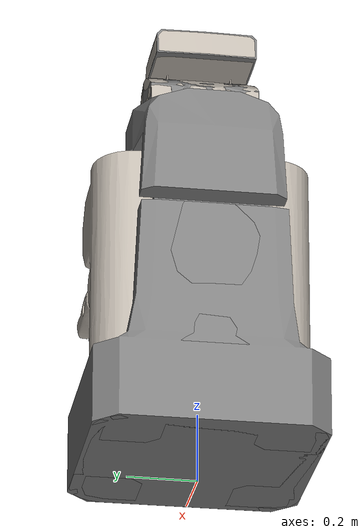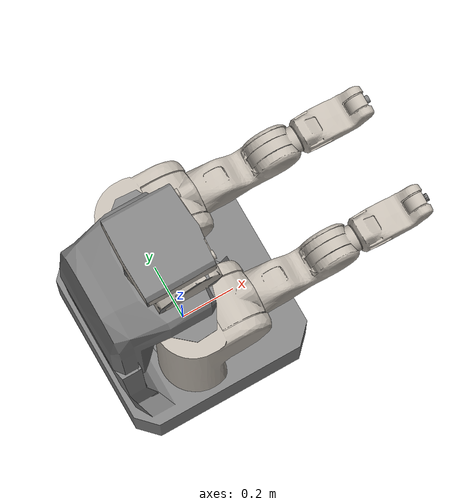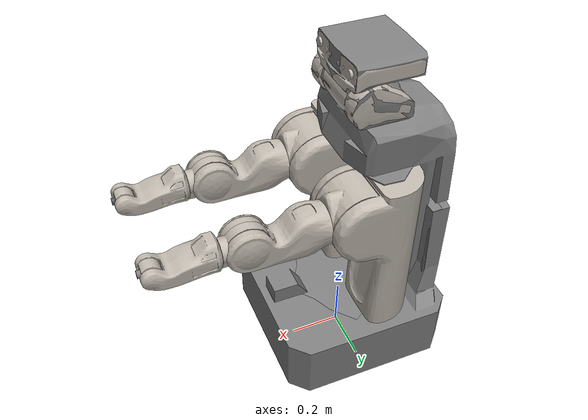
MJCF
<?xml version="1.0" ?>
<mujoco>
  <compiler angle="radian" autolimits="true"/>
  <visual>
    <global ellipsoidinertia="true"/>
  </visual>
  <default>
    <default class="pr2_joints">
      <motor ctrlrange="-100 100" ctrllimited="true"/>
    </default>
    <default class="pr2_shoulder_joints">
      <motor ctrlrange="-100 100" ctrllimited="true"/>
    </default>
    <default class="pr2_wrist_joints">
      <motor ctrlrange="-100 100" ctrllimited="true"/>
    </default>
  </default>
  <asset>
    <material name="groundplane" texture="groundplane" texuniform="true" texrepeat="5 5" reflectance="0.2"/>
    <texture type="2d" name="groundplane" builtin="checker" mark="edge" rgb1="0.2 0.3 0.4" rgb2="0.1 0.2 0.3" markrgb="0.8 0.8 0.8" width="300" height="300"/>
    <material name="base" rgba="0.5 0.5 0.5 1.0"/>
    <material name="head_v0_head_pan_mat" texture="head_v0_head_pan_tex"/>
    <texture type="2d" name="head_v0_head_pan_tex" file="meshes/head_v0/head_pan_color.png"/>
    <material name="head_v0_head_tilt_mat" texture="head_v0_head_tilt_tex"/>
    <texture type="2d" name="head_v0_head_tilt_tex" file="meshes/head_v0/head_tilt_color.png"/>
    <material name="forearm_v0_forearm_mat" texture="forearm_v0_forearm_tex"/>
    <texture type="2d" name="forearm_v0_forearm_tex" file="meshes/forearm_v0/forearm_color.png"/>
    <material name="forearm_v0_wrist_flex_mat" texture="forearm_v0_wrist_flex_tex"/>
    <texture type="2d" name="forearm_v0_wrist_flex_tex" file="meshes/forearm_v0/wrist_color.png"/>
    <material name="shoulder_v0_shoulder_lift_mat" texture="shoulder_v0_shoulder_lift_tex"/>
    <texture type="2d" name="shoulder_v0_shoulder_lift_tex" file="meshes/shoulder_v0/shoulder_lift_color.png"/>
    <material name="shoulder_v0_shoulder_pan_mat" texture="shoulder_v0_shoulder_pan_tex"/>
    <texture type="2d" name="shoulder_v0_shoulder_pan_tex" file="meshes/shoulder_v0/shoulder_pan_color.png"/>
    <material name="shoulder_v0_upper_arm_roll_mat" texture="shoulder_v0_upper_arm_roll_tex"/>
    <texture type="2d" name="shoulder_v0_upper_arm_roll_tex" file="meshes/shoulder_v0/upper_arm_roll_color.png"/>
    <material name="upper_arm_v0_upper_arm_mat" texture="upper_arm_v0_upper_arm_tex"/>
    <texture type="2d" name="upper_arm_v0_upper_arm_tex" file="meshes/upper_arm_v0/upper_arm_color.png"/>
    <material name="upper_arm_v0_elbow_flex_mat" texture="upper_arm_v0_elbow_flex_tex"/>
    <texture type="2d" name="upper_arm_v0_elbow_flex_tex" file="meshes/upper_arm_v0/elbow_flex_color.png"/>
    <mesh name="base_v0_base_vis" file="meshes/base_v0/base.obj"/>
    <mesh name="base_v0_base_L" file="meshes/base_v0/base_L.stl"/>
    <mesh name="base_v0_caster" file="meshes/base_v0/caster.stl"/>
    <mesh name="base_v0_caster_L" file="meshes/base_v0/caster_L.stl"/>
    <mesh name="torso_v0_torso_lift_L" file="meshes/torso_v0/torso_lift_L.stl"/>
    <mesh name="head_v0_head_pan_vis" file="meshes/head_v0/head_pan.obj"/>
    <mesh name="head_v0_head_pan_L" file="meshes/head_v0/head_pan_L.stl"/>
    <mesh name="head_v0_head_tilt_vis" file="meshes/head_v0/head_tilt.obj"/>
    <mesh name="head_v0_head_tilt_L" file="meshes/head_v0/head_tilt_L.stl"/>
    <mesh name="shoulder_v0_shoulder_pan_vis" file="meshes/shoulder_v0/shoulder_pan.obj"/>
    <mesh name="shoulder_v0_shoulder_pan" file="meshes/shoulder_v0/shoulder_pan.stl"/>
    <mesh name="shoulder_v0_shoulder_lift_vis" file="meshes/shoulder_v0/shoulder_lift.obj"/>
    <mesh name="shoulder_v0_shoulder_lift" file="meshes/shoulder_v0/shoulder_lift.stl"/>
    <mesh name="shoulder_v0_upper_arm_roll" file="meshes/shoulder_v0/upper_arm_roll.stl"/>
    <mesh name="shoulder_v0_upper_arm_roll_L" file="meshes/shoulder_v0/upper_arm_roll_L.stl"/>
    <mesh name="upper_arm_v0_upper_arm_vis" file="meshes/upper_arm_v0/upper_arm.obj"/>
    <mesh name="upper_arm_v0_upper_arm" file="meshes/upper_arm_v0/upper_arm.stl"/>
    <mesh name="upper_arm_v0_forearm_roll" file="meshes/upper_arm_v0/forearm_roll.stl"/>
    <mesh name="upper_arm_v0_forearm_roll_L" file="meshes/upper_arm_v0/forearm_roll_L.stl"/>
    <mesh name="upper_arm_v0_elbow_flex_vis" file="meshes/upper_arm_v0/elbow_flex.obj"/>
    <mesh name="upper_arm_v0_elbow_flex" file="meshes/upper_arm_v0/elbow_flex.stl"/>
    <mesh name="forearm_v0_forearm_vis" file="meshes/forearm_v0/forearm.obj"/>
    <mesh name="forearm_v0_forearm" file="meshes/forearm_v0/forearm.stl"/>
    <mesh name="forearm_v0_wrist_flex_vis" file="meshes/forearm_v0/wrist_flex.obj"/>
    <mesh name="forearm_v0_wrist_flex" file="meshes/forearm_v0/wrist_flex.stl"/>
    <mesh name="forearm_v0_wrist_roll" file="meshes/forearm_v0/wrist_roll.stl"/>
    <mesh name="forearm_v0_wrist_roll_L" file="meshes/forearm_v0/wrist_roll_L.stl"/>
  </asset>
  <worldbody>
    <!--Start of base-->
    <body name="base">
      <body name="base_link" pos="0.0 0.0 0.051" quat="1.0 0.0 0.0 0.0">
        <inertial pos="-0.061 0.0 0.1465" quat="1.0 0.0 0.0 0.0" mass="116.0" diaginertia="5.652232699207 5.669473158652 3.683196351726"/>
        <geom pos="0.0 0.0 0.0" quat="1.0 0.0 0.0 0.0" name="base_link_visual" group="1" contype="0" conaffinity="0" mesh="base_v0_base_vis" type="mesh" material="base"/>
        <geom pos="0.0 0.0 0.0" quat="1.0 0.0 0.0 0.0" name="base_link_collision" group="0" mesh="base_v0_base_L" type="mesh"/>
        <body name="torso_lift_link" pos="-0.05 0.0 0.739675" quat="1.0 0.0 0.0 0.0">
          <inertial pos="-0.1 0 -0.0885" quat="1.0 0.0 0.0 0.0" mass="36.248046" diaginertia="2.771653750257 2.510019507959 0.526432355569"/>
          <geom pos="0.0 0.0 0.0" quat="1.0 0.0 0.0 0.0" name="torso_lift_link_visual" group="1" contype="0" conaffinity="0" mesh="torso_v0_torso_lift_L" type="mesh"/>
          <geom pos="0.0 0.0 0.0" quat="1.0 0.0 0.0 0.0" name="torso_lift_link_collision" group="0" mesh="torso_v0_torso_lift_L" type="mesh"/>
          <body name="head_mount" pos="0.0 0.0 0.0" quat="1 0 0 0">
            <!--Start of head_pan_link-->
            <body name="head_pan_link" pos="-0.01707 0.0 0.38145" quat="1.0 0.0 0.0 0.0">
              <joint name="head_pan_joint" type="hinge" frictionloss="0.5" damping="30" stiffness="0.3" axis="0 0 1" range="-3.007 3.007"/>
              <inertial pos="0.010907 0.031693 0.090507" quat="1.0 0.0 0.0 0.0" mass="6.339" diaginertia="0.032497592 0.046545627 0.057652724"/>
              <geom pos="0.0 0.0 0.0" quat="1.0 0.0 0.0 0.0" name="head_pan_link_visual" group="1" contype="0" conaffinity="0" mesh="head_v0_head_pan_vis" material="head_v0_head_pan_mat" type="mesh"/>
              <geom pos="0.0 0.0 0.0" quat="1.0 0.0 0.0 0.0" name="head_pan_link_collision" group="0" mesh="head_v0_head_pan_L" type="mesh"/>
              <!--Start of head_tilt_link-->
              <body name="head_tilt_link" pos="0.068 0.0 0.0" quat="1.0 0.0 0.0 0.0">
                <joint name="head_tilt_joint" type="hinge" frictionloss="0.5" damping="100" stiffness="0.3" axis="0 1 0" range="-0.471238 1.39626"/>
                <inertial pos="0.001716 -0.019556 0.055002" quat="1.0 0.0 0.0 0.0" mass="4.479" diaginertia="0.024223222 0.054723086 0.067306377"/>
                <geom pos="0.0 0.0 0.0" quat="1.0 0.0 0.0 0.0" name="head_tilt_link_visual" group="1" contype="0" conaffinity="0" mesh="head_v0_head_tilt_vis" material="head_v0_head_tilt_mat" type="mesh"/>
                <geom pos="0.0 0.0 0.0" quat="1.0 0.0 0.0 0.0" name="head_tilt_link_collision" group="0" mesh="head_v0_head_tilt_L" type="mesh"/>
                <camera mode="fixed" name="robotview_left" pos="0.10 0.10 0.12" quat="0.5 0.5 -0.5 -0.5"/>
                <camera mode="fixed" name="robotview_right" pos="0.10 -0.10 0.12" quat="0.5 0.5 -0.5 -0.5"/>
              </body>
              <!--End of head_tilt_link-->
            </body>
            <!--End of head_pan_link-->
          </body>
          <body name="right_arm" pos="0.0 0.0 0.0" quat="1 0 0 0">
            <!--Start of r_shoulder_pan_link-->
            <site name="right_center" pos="0 0 0" size="0.01" rgba="1 0.3 0.3 1" group="2"/>
            <body name="r_shoulder_pan_link" pos="0.0 -0.188 0.0" quat="1.0 0.0 0.0 0.0">
              <joint name="r_shoulder_pan_joint" type="hinge" armature="0.1" damping="0" axis="0 0 1" range="-2.2853981634 0.714601836603"/>
              <inertial pos="-0.001201 0.024513 -0.098231" quat="1.0 0.0 0.0 0.0" mass="25.799322" diaginertia="0.866179142480 0.87421714893 0.27353821674"/>
              <geom pos="0.0 0.0 0.0" quat="1.0 0.0 0.0 0.0" name="r_shoulder_pan_link_visual" group="1" contype="0" conaffinity="0" mesh="shoulder_v0_shoulder_pan_vis" material="shoulder_v0_shoulder_pan_mat" type="mesh"/>
              <geom pos="0.0 0.0 0.0" quat="1.0 0.0 0.0 0.0" name="r_shoulder_pan_link_collision" group="0" mesh="shoulder_v0_shoulder_pan" type="mesh"/>
              <!--Start of r_shoulder_lift_link-->
              <body name="r_shoulder_lift_link" pos="0.1 0.0 0.0" quat="1.0 0.0 0.0 0.0">
                <joint name="r_shoulder_lift_joint" type="hinge" armature="0.1" damping="0" axis="0 1 0" range="-0.5236 1.3963"/>
                <inertial pos="0.02195 -0.02664 -0.03127" quat="1.0 0.0 0.0 0.0" mass="2.74988" diaginertia="0.02105584615 0.02127223737 0.01975753814"/>
                <geom pos="0.0 0.0 0.0" quat="1.0 0.0 0.0 0.0" name="r_shoulder_lift_link_visual" group="1" contype="0" conaffinity="0" mesh="shoulder_v0_shoulder_lift_vis" material="shoulder_v0_shoulder_lift_mat" type="mesh"/>
                <geom pos="0.0 0.0 0.0" quat="1.0 0.0 0.0 0.0" name="r_shoulder_lift_link_collision" group="0" mesh="shoulder_v0_shoulder_lift" type="mesh"/>
                <!--Start of r_upper_arm_roll_link-->
                <body name="r_upper_arm_roll_link" pos="0.0 0.0 0.0" quat="1.0 0.0 0.0 0.0">
                  <joint name="r_upper_arm_roll_joint" type="hinge" armature="0.1" damping="0" axis="1 0 0" range="-3.9 0.8"/>
                  <inertial pos="0.0 0 0" quat="1.0 0.0 0.0 0.0" mass="0.1" diaginertia="0.01 0.01 0.01"/>
                  <geom pos="0.0 0.0 0.0" quat="1.0 0.0 0.0 0.0" name="r_upper_arm_roll_link_visual" group="1" contype="0" conaffinity="0" mesh="shoulder_v0_upper_arm_roll" material="shoulder_v0_upper_arm_roll_mat" type="mesh"/>
                  <geom pos="0.0 0.0 0.0" quat="1.0 0.0 0.0 0.0" name="r_upper_arm_roll_link_collision" group="0" mesh="shoulder_v0_upper_arm_roll_L" type="mesh"/>
                  <!--Start of r_upper_arm_link-->
                  <body name="r_upper_arm_link" pos="0.0 0.0 0.0" quat="1.0 0.0 0.0 0.0">
                    <inertial pos="0.21398 -0.01621 -0.0002" quat="1.0 0.0 0.0 0.0" mass="6.01769" diaginertia="0.01537748957 0.0747367044 0.07608763307"/>
                    <geom pos="0.0 0.0 0.0" quat="1.0 0.0 0.0 0.0" name="r_upper_arm_link_visual" group="1" contype="0" conaffinity="0" mesh="upper_arm_v0_upper_arm_vis" material="upper_arm_v0_upper_arm_mat" type="mesh"/>
                    <geom pos="0.0 0.0 0.0" quat="1.0 0.0 0.0 0.0" name="r_upper_arm_link_collision" group="0" mesh="upper_arm_v0_upper_arm" type="mesh"/>
                    <!--Start of r_elbow_flex_link-->
                    <body name="r_elbow_flex_link" pos="0.4 0.0 0.0" quat="1.0 0.0 0.0 0.0">
                      <joint name="r_elbow_flex_joint" type="hinge" armature="0.1" damping="0" axis="0 1 0" range="-2.3213 0.00"/>
                      <inertial pos="0.01014 0.00032 -0.01211" quat="1.0 0.0 0.0 0.0" mass="1.90327" diaginertia="0.00346541989 0.00441606455 0.00359156824"/>
                      <geom pos="0.0 0.0 0.0" quat="1.0 0.0 0.0 0.0" name="r_elbow_flex_link_visual" group="1" contype="0" conaffinity="0" mesh="upper_arm_v0_elbow_flex_vis" material="upper_arm_v0_elbow_flex_mat" type="mesh"/>
                      <geom pos="0.0 0.0 0.0" quat="1.0 0.0 0.0 0.0" name="r_elbow_flex_link_collision" group="0" mesh="upper_arm_v0_elbow_flex" type="mesh"/>
                      <!--Start of r_forearm_roll_link-->
                      <body name="r_forearm_roll_link" pos="0.0 0.0 0.0" quat="1.0 0.0 0.0 0.0">
                        <joint name="r_forearm_roll_joint" type="hinge" armature="0.1" damping="0" axis="1 0 0" range="-3.14159 3.14159"/>
                        <inertial pos="0 0 0" quat="1.0 0.0 0.0 0.0" mass="0.1" diaginertia="0.01 0.01 0.01"/>
                        <geom pos="0.0 0.0 0.0" quat="1.0 0.0 0.0 0.0" name="r_forearm_roll_link_visual" group="1" contype="0" conaffinity="0" mesh="upper_arm_v0_forearm_roll" type="mesh"/>
                        <geom pos="0.0 0.0 0.0" quat="1.0 0.0 0.0 0.0" name="r_forearm_roll_link_collision" group="0" mesh="upper_arm_v0_forearm_roll_L" type="mesh"/>
                        <!--Start of r_forearm_link-->
                        <body name="r_forearm_link" pos="0.0 0.0 0.0" quat="1.0 0.0 0.0 0.0">
                          <inertial pos="0.18791 -0.00017 -0.00912" quat="1.0 0.0 0.0 0.0" mass="2.57968" diaginertia="0.00364857222 0.01507736897 0.01659310749"/>
                          <geom pos="0.0 0.0 0.0" quat="1.0 0.0 0.0 0.0" name="r_forearm_link_visual" group="1" contype="0" conaffinity="0" mesh="forearm_v0_forearm_vis" material="forearm_v0_forearm_mat" type="mesh"/>
                          <geom pos="0.0 0.0 0.0" quat="1.0 0.0 0.0 0.0" name="r_forearm_link_collision" group="0" mesh="forearm_v0_forearm" type="mesh"/>
                          <!--Start of r_wrist_flex_link-->
                          <body name="r_wrist_flex_link" pos="0.321 0.0 0.0" quat="1.0 0.0 0.0 0.0">
                            <joint name="r_wrist_flex_joint" type="hinge" armature="0.1" damping="0" axis="0 1 0" range="-2.18 0.0"/>
                            <inertial pos="-0.00157 0.0 -0.00075" quat="1.0 0.0 0.0 0.0" mass="0.61402" diaginertia="0.00065165722 0.00019824443 0.00064450498"/>
                            <geom pos="0.0 0.0 0.0" quat="1.0 0.0 0.0 0.0" name="r_wrist_flex_link_visual" group="1" contype="0" conaffinity="0" mesh="forearm_v0_wrist_flex_vis" material="forearm_v0_wrist_flex_mat" type="mesh"/>
                            <geom pos="0.0 0.0 0.0" quat="1.0 0.0 0.0 0.0" name="r_wrist_flex_link_collision" group="0" mesh="forearm_v0_wrist_flex" type="mesh"/>
                            <!--Start of r_wrist_roll_link-->
                            <body name="r_wrist_roll_link" pos="0.0 0.0 0.0" quat="1.0 0.0 0.0 0.0">
                              <joint name="r_wrist_roll_joint" type="hinge" armature="0.1" damping="0" axis="1 0 0" range="-3.14159 3.14159"/>
                              <inertial pos="0 0 0" quat="1.0 0.0 0.0 0.0" mass="0.1" diaginertia="0.01 0.01 0.01"/>
                              <geom pos="0.0 0.0 0.0" quat="1.0 0.0 0.0 0.0" name="r_wrist_roll_link_visual" group="1" contype="0" conaffinity="0" mesh="forearm_v0_wrist_roll" type="mesh"/>
                              <geom pos="0.0 0.0 0.0" quat="1.0 0.0 0.0 0.0" name="r_wrist_roll_link_collision" group="0" mesh="forearm_v0_wrist_roll_L" type="mesh"/>
                              <!--Start of right_hand-->
                              <body name="right_hand" pos="0.0 0.0 0.0" quat="1 0 0 0">
                            </body>
                              <!--End of right_hand-->
                            </body>
                            <!--End of r_wrist_roll_link-->
                          </body>
                          <!--End of r_wrist_flex_link-->
                        </body>
                        <!--End of r_forearm_link-->
                      </body>
                      <!--End of r_elbow_flex_link-->
                    </body>
                    <!--End of r_forearm_roll_link-->
                  </body>
                  <!--End of r_upper_arm_link-->
                </body>
                <!--End of r_upper_arm_roll_link-->
              </body>
              <!--End of r_shoulder_lift_link-->
            </body>
            <!--End of r_shoulder_pan_link-->
          </body>
          <body name="left_arm" pos="0.0 0.0 0.0" quat="1 0 0 0">
            <site name="left_center" pos="0 0 0" size="0.01" rgba="1 0.3 0.3 1" group="2"/>
            <!--Start of l_shoulder_pan_link-->
            <body name="l_shoulder_pan_link" pos="0.0 0.188 0.0" quat="1.0 0.0 0.0 0.0">
              <joint name="l_shoulder_pan_joint" type="hinge" armature="0.1" damping="0" axis="0 0 1" range="-0.714601836603 2.2853981634"/>
              <inertial pos="-0.001201 0.024513 -0.098231" quat="1.0 0.0 0.0 0.0" mass="25.799322" diaginertia="0.866179142480 0.87421714893 0.27353821674"/>
              <geom pos="0.0 0.0 0.0" quat="1.0 0.0 0.0 0.0" name="l_shoulder_pan_link_visual" group="1" contype="0" conaffinity="0" mesh="shoulder_v0_shoulder_pan_vis" material="shoulder_v0_shoulder_pan_mat" type="mesh"/>
              <geom pos="0.0 0.0 0.0" quat="1.0 0.0 0.0 0.0" name="l_shoulder_pan_link_collision" group="0" mesh="shoulder_v0_shoulder_pan" type="mesh"/>
              <!--Start of l_shoulder_lift_link-->
              <body name="l_shoulder_lift_link" pos="0.1 0.0 0.0" quat="1.0 0.0 0.0 0.0">
                <joint name="l_shoulder_lift_joint" type="hinge" armature="0.1" damping="0" axis="0 1 0" range="-0.5236 1.3963"/>
                <inertial pos="0.02195 -0.02664 -0.03127" quat="1.0 0.0 0.0 0.0" mass="2.74988" diaginertia="0.02105584615 0.02127223737 0.01975753814"/>
                <geom pos="0.0 0.0 0.0" quat="1.0 0.0 0.0 0.0" name="l_shoulder_lift_link_visual" group="1" contype="0" conaffinity="0" mesh="shoulder_v0_shoulder_lift_vis" material="shoulder_v0_shoulder_lift_mat" type="mesh"/>
                <geom pos="0.0 0.0 0.0" quat="1.0 0.0 0.0 0.0" name="l_shoulder_lift_link_collision" group="0" mesh="shoulder_v0_shoulder_lift" type="mesh"/>
                <!--Start of l_upper_arm_roll_link-->
                <body name="l_upper_arm_roll_link" pos="0.0 0.0 0.0" quat="1.0 0.0 0.0 0.0">
                  <joint name="l_upper_arm_roll_joint" type="hinge" armature="0.1" damping="0" axis="1 0 0" range="-0.8 3.9"/>
                  <inertial pos="0.0 0 0" quat="1.0 0.0 0.0 0.0" mass="0.1" diaginertia="0.01 0.01 0.01"/>
                  <geom pos="0.0 0.0 0.0" quat="1.0 0.0 0.0 0.0" name="l_upper_arm_roll_link_visual" group="1" contype="0" conaffinity="0" mesh="shoulder_v0_upper_arm_roll" material="shoulder_v0_upper_arm_roll_mat" type="mesh"/>
                  <geom pos="0.0 0.0 0.0" quat="1.0 0.0 0.0 0.0" name="l_upper_arm_roll_link_collision" group="0" mesh="shoulder_v0_upper_arm_roll_L" type="mesh"/>
                  <!--Start of l_upper_arm_link-->
                  <body name="l_upper_arm_link" pos="0.0 0.0 0.0" quat="1.0 0.0 0.0 0.0">
                    <inertial pos="0.21405 0.01658 -0.00057" quat="1.0 0.0 0.0 0.0" mass="6.01769" diaginertia="0.01530603856 0.07473694455 0.07601594191"/>
                    <geom pos="0.0 0.0 0.0" quat="1.0 0.0 0.0 0.0" name="l_upper_arm_link_visual" group="1" contype="0" conaffinity="0" mesh="upper_arm_v0_upper_arm_vis" material="upper_arm_v0_upper_arm_mat" type="mesh"/>
                    <geom pos="0.0 0.0 0.0" quat="1.0 0.0 0.0 0.0" name="l_upper_arm_link_collision" group="0" mesh="upper_arm_v0_upper_arm" type="mesh"/>
                    <!--Start of l_elbow_flex_link-->
                    <body name="l_elbow_flex_link" pos="0.4 0.0 0.0" quat="1.0 0.0 0.0 0.0">
                      <joint name="l_elbow_flex_joint" type="hinge" armature="0.1" damping="0" axis="0 1 0" range="-2.3213 0.00"/>
                      <inertial pos="0.01014 0.00032 -0.01211" quat="1.0 0.0 0.0 0.0" mass="1.90327" diaginertia="0.00346541989 0.00441606455 0.00359156824"/>
                      <geom pos="0.0 0.0 0.0" quat="1.0 0.0 0.0 0.0" name="l_elbow_flex_link_visual" group="1" contype="0" conaffinity="0" mesh="upper_arm_v0_elbow_flex_vis" material="upper_arm_v0_elbow_flex_mat" type="mesh"/>
                      <geom pos="0.0 0.0 0.0" quat="1.0 0.0 0.0 0.0" name="l_elbow_flex_link_collision" group="0" mesh="upper_arm_v0_elbow_flex" type="mesh"/>
                      <!--Start of l_forearm_roll_link-->
                      <body name="l_forearm_roll_link" pos="0.0 0.0 0.0" quat="1.0 0.0 0.0 0.0">
                        <joint name="l_forearm_roll_joint" type="hinge" armature="0.1" damping="0" axis="1 0 0" range="-3.14159 3.14159"/>
                        <inertial pos="0 0 0" quat="1.0 0.0 0.0 0.0" mass="0.1" diaginertia="0.01 0.01 0.01"/>
                        <geom pos="0.0 0.0 0.0" quat="1.0 0.0 0.0 0.0" name="l_forearm_roll_link_visual" group="1" contype="0" conaffinity="0" mesh="upper_arm_v0_forearm_roll" type="mesh"/>
                        <geom pos="0.0 0.0 0.0" quat="1.0 0.0 0.0 0.0" name="l_forearm_roll_link_collision" group="0" mesh="upper_arm_v0_forearm_roll_L" type="mesh"/>
                        <!--Start of l_forearm_link-->
                        <body name="l_forearm_link" pos="0.0 0.0 0.0" quat="1.0 0.0 0.0 0.0">
                          <inertial pos="0.18791 -0.00017 -0.00912" quat="1.0 0.0 0.0 0.0" mass="2.57968" diaginertia="0.00364857222 0.01507736897 0.01659310749"/>
                          <geom pos="0.0 0.0 0.0" quat="1.0 0.0 0.0 0.0" name="l_forearm_link_visual" group="1" contype="0" conaffinity="0" mesh="forearm_v0_forearm_vis" material="forearm_v0_forearm_mat" type="mesh"/>
                          <geom pos="0.0 0.0 0.0" quat="1.0 0.0 0.0 0.0" name="l_forearm_link_collision" group="0" mesh="forearm_v0_forearm" type="mesh"/>
                          <!--Start of l_wrist_flex_link-->
                          <body name="l_wrist_flex_link" pos="0.321 0.0 0.0" quat="1.0 0.0 0.0 0.0">
                            <joint name="l_wrist_flex_joint" type="hinge" armature="0.1" damping="0" axis="0 1 0" range="-2.18 0.0"/>
                            <inertial pos="-0.00157 0.0 -0.00075" quat="1.0 0.0 0.0 0.0" mass="0.61402" diaginertia="0.00065165722 0.00019824443 0.00064450498"/>
                            <geom pos="0.0 0.0 0.0" quat="1.0 0.0 0.0 0.0" name="l_wrist_flex_link_visual" group="1" contype="0" conaffinity="0" mesh="forearm_v0_wrist_flex_vis" material="forearm_v0_wrist_flex_mat" type="mesh"/>
                            <geom pos="0.0 0.0 0.0" quat="1.0 0.0 0.0 0.0" name="l_wrist_flex_link_collision" group="0" mesh="forearm_v0_wrist_flex" type="mesh"/>
                            <!--Start of l_wrist_roll_link-->
                            <body name="l_wrist_roll_link" pos="0.0 0.0 0.0" quat="1.0 0.0 0.0 0.0">
                              <joint name="l_wrist_roll_joint" type="hinge" armature="0.1" damping="0" axis="1 0 0" range="-3.14159 3.14159"/>
                              <inertial pos="0 0 0" quat="1.0 0.0 0.0 0.0" mass="0.1" diaginertia="0.01 0.01 0.01"/>
                              <geom pos="0.0 0.0 0.0" quat="1.0 0.0 0.0 0.0" name="l_wrist_roll_link_visual" group="4" contype="0" conaffinity="0" mesh="forearm_v0_wrist_roll" type="mesh"/>
                              <geom pos="0.0 0.0 0.0" quat="1.0 0.0 0.0 0.0" name="l_wrist_roll_link_collision" group="0" mesh="forearm_v0_wrist_roll_L" type="mesh"/>
                              <!--Start of left_hand-->
                              <body name="left_hand" pos="0.0 0.0 0.0" quat="1 0 0 0">
                              </body>
                              <!--End of left_hand-->
                            </body>
                            <!--End of l_wrist_roll_link-->
                          </body>
                          <!--End of l_wrist_flex_link-->
                        </body>
                        <!--End of l_forearm_link-->
                      </body>
                      <!--End of l_elbow_flex_link-->
                    </body>
                    <!--End of l_forearm_roll_link-->
                  </body>
                  <!--End of l_upper_arm_link-->
                </body>
                <!--End of l_upper_arm_roll_link-->
              </body>
              <!--End of l_shoulder_lift_link-->
            </body>
            <!--End of l_shoulder_pan_link-->
          </body>
        </body>
      </body>
      <!--End of base_link-->
    </body>
    <!--End of base-->
  </worldbody>
  <actuator>
    <motor name="head_pan_actuator" joint="head_pan_joint" class="pr2_shoulder_joints"/>
    <motor name="head_tilt_actuator" joint="head_tilt_joint" class="pr2_shoulder_joints"/>
    <motor name="r_shoulder_pan_actuator" joint="r_shoulder_pan_joint" class="pr2_shoulder_joints"/>
    <motor name="r_shoulder_lift_actuator" joint="r_shoulder_lift_joint" class="pr2_joints"/>
    <motor name="r_upper_arm_roll_actuator" joint="r_upper_arm_roll_joint" class="pr2_joints"/>
    <motor name="r_elbow_flex_actuator" joint="r_elbow_flex_joint" class="pr2_joints"/>
    <motor name="r_forearm_roll_actuator" joint="r_forearm_roll_joint" class="pr2_joints"/>
    <motor name="r_wrist_flex_actuator" joint="r_wrist_flex_joint" class="pr2_wrist_joints"/>
    <motor name="r_wrist_roll_actuator" joint="r_wrist_roll_joint" class="pr2_wrist_joints"/>
    <motor name="l_shoulder_pan_actuator" joint="l_shoulder_pan_joint" class="pr2_shoulder_joints"/>
    <motor name="l_shoulder_lift_actuator" joint="l_shoulder_lift_joint" class="pr2_shoulder_joints"/>
    <motor name="l_upper_arm_roll_actuator" joint="l_upper_arm_roll_joint" class="pr2_shoulder_joints" ctrllimited="true"/>
    <motor name="l_elbow_flex_actuator" joint="l_elbow_flex_joint" class="pr2_joints"/>
    <motor name="l_forearm_roll_actuator" joint="l_forearm_roll_joint" class="pr2_joints"/>
    <motor name="l_wrist_flex_actuator" joint="l_wrist_flex_joint" class="pr2_wrist_joints"/>
    <motor name="l_wrist_roll_actuator" joint="l_wrist_roll_joint" class="pr2_wrist_joints"/>
  </actuator>
  <contact>
    <exclude body1="r_shoulder_pan_link" body2="base_link"/>
    <exclude body1="l_shoulder_pan_link" body2="base_link"/>
    <exclude body1="r_shoulder_pan_link" body2="torso_lift_link"/>
    <exclude body1="l_shoulder_pan_link" body2="torso_lift_link"/>
    <exclude body1="r_shoulder_lift_link" body2="torso_lift_link"/>
    <exclude body1="l_shoulder_lift_link" body2="torso_lift_link"/>
    <exclude body1="left_arm" body2="torso_lift_link"/>
    <exclude body1="right_arm" body2="torso_lift_link"/>
    <exclude body1="torso_lift_link" body2="base_link"/>
    <exclude body1="torso_lift_link" body2="base_link"/>
    <exclude body1="r_shoulder_pan_link" body2="r_shoulder_lift_link"/>
    <exclude body1="r_shoulder_lift_link" body2="r_upper_arm_roll_link"/>
    <exclude body1="r_shoulder_pan_link" body2="r_upper_arm_roll_link"/>
    <exclude body1="l_shoulder_lift_link" body2="l_upper_arm_roll_link"/>
    <exclude body1="l_shoulder_pan_link" body2="l_upper_arm_roll_link"/>
    <exclude body1="r_shoulder_pan_link" body2="r_upper_arm_link"/>
    <exclude body1="l_shoulder_pan_link" body2="l_upper_arm_link"/>
    <exclude body1="r_forearm_roll_link" body2="r_upper_arm_link"/>
    <exclude body1="l_forearm_roll_link" body2="l_upper_arm_link"/>
    <exclude body1="r_forearm_link" body2="r_upper_arm_link"/>
    <exclude body1="l_forearm_link" body2="l_upper_arm_link"/>
    <exclude body1="r_wrist_roll_link" body2="r_forearm_link"/>
    <exclude body1="l_wrist_roll_link" body2="l_forearm_link"/>
    <exclude body1="l_shoulder_pan_link" body2="l_shoulder_lift_link"/>
    <exclude body1="r_wrist_roll_link" body2="r_wrist_flex_link"/>
    <exclude body1="l_wrist_roll_link" body2="l_wrist_flex_link"/>
  </contact>
</mujoco>
